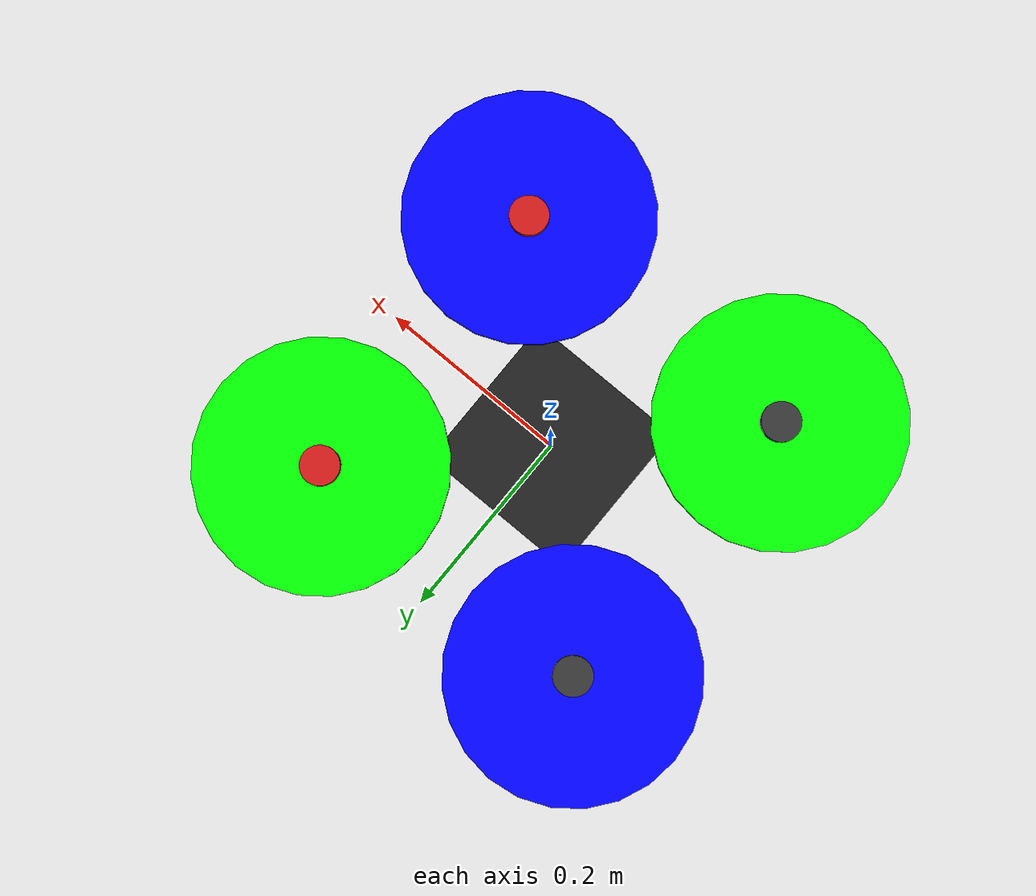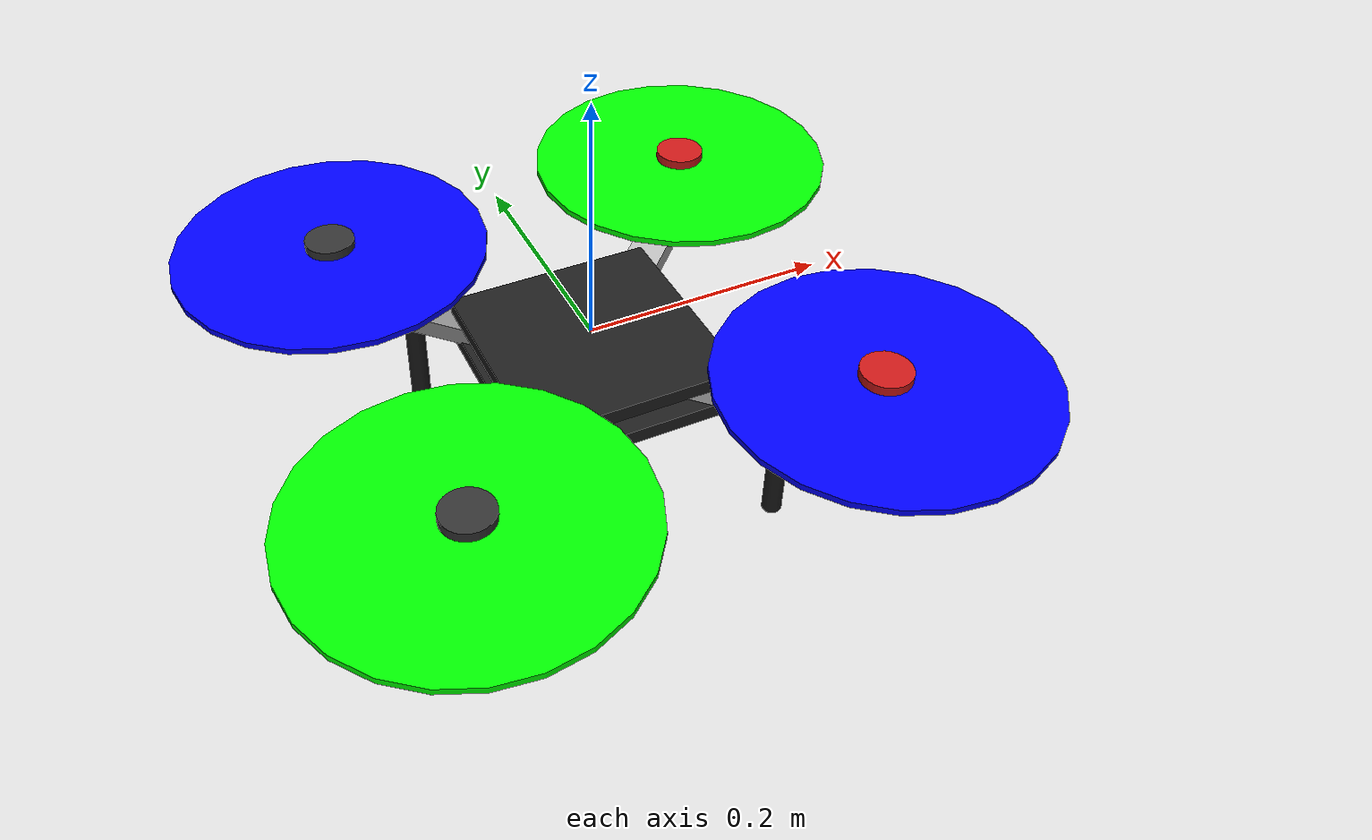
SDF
<?xml version='1.0'?>
<sdf version="1.9">
  <model name="sentinel_f450">
    <pose>0 0 0 0 0 0</pose>

    <link name="base_link">
      <velocity_decay>
        <linear>0.0</linear>
        <angular>0.0</angular>
      </velocity_decay>
      <inertial>
        <pose>0 0 0 0 0 0</pose>
        <mass>1.2</mass>
        <inertia>
          <ixx>0.011</ixx>
          <ixy>0</ixy>
          <ixz>0</ixz>
          <iyy>0.011</iyy>
          <iyz>0</iyz>
          <izz>0.019</izz>
        </inertia>
      </inertial>

      <!-- top plate -->
      <collision name="top_plate_collision">
        <pose>0 0 -0.01 0 0 0</pose>
        <geometry>
          <box>
            <size>0.17 0.17 0.012</size>
          </box>
        </geometry>
      </collision>
      <visual name="top_plate_visual">
        <pose>0 0 -0.01 0 0 0</pose>
        <geometry>
          <box>
            <size>0.17 0.17 0.012</size>
          </box>
        </geometry>
        <material>
          <ambient>0.12 0.12 0.12 1</ambient>
          <diffuse>0.12 0.12 0.12 1</diffuse>
          <specular>0.3 0.3 0.3 1</specular>
        </material>
      </visual>

      <!-- bottom plate -->
      <collision name="bottom_plate_collision">
        <pose>0 0 -0.038 0 0 0</pose>
        <geometry>
          <box>
            <size>0.17 0.17 0.012</size>
          </box>
        </geometry>
      </collision>
      <visual name="bottom_plate_visual">
        <pose>0 0 -0.038 0 0 0</pose>
        <geometry>
          <box>
            <size>0.17 0.17 0.012</size>
          </box>
        </geometry>
        <material>
          <ambient>0.12 0.12 0.12 1</ambient>
          <diffuse>0.12 0.12 0.12 1</diffuse>
          <specular>0.3 0.3 0.3 1</specular>
        </material>
      </visual>

      <!-- battery (visual only) -->
      <visual name="battery_visual">
        <pose>-0.02 0 -0.056 0 0 0</pose>
        <geometry>
          <box>
            <size>0.09 0.04 0.028</size>
          </box>
        </geometry>
        <material>
          <ambient>0.08 0.15 0.45 1</ambient>
          <diffuse>0.08 0.15 0.45 1</diffuse>
          <specular>0.2 0.2 0.2 1</specular>
        </material>
      </visual>

      <!-- arms (X layout, 45 deg) -->
      <collision name="arm_fl_collision">
        <pose>0.05 0.05 -0.026 0 0 0.7854</pose>
        <geometry>
          <box>
            <size>0.19 0.03 0.015</size>
          </box>
        </geometry>
      </collision>
      <visual name="arm_fl_visual">
        <pose>0.05 0.05 -0.026 0 0 0.7854</pose>
        <geometry>
          <box>
            <size>0.19 0.03 0.015</size>
          </box>
        </geometry>
        <material>
          <ambient>0.75 0.75 0.75 1</ambient>
          <diffuse>0.75 0.75 0.75 1</diffuse>
          <specular>0.2 0.2 0.2 1</specular>
        </material>
      </visual>

      <collision name="arm_fr_collision">
        <pose>0.05 -0.05 -0.026 0 0 -0.7854</pose>
        <geometry>
          <box>
            <size>0.19 0.03 0.015</size>
          </box>
        </geometry>
      </collision>
      <visual name="arm_fr_visual">
        <pose>0.05 -0.05 -0.026 0 0 -0.7854</pose>
        <geometry>
          <box>
            <size>0.19 0.03 0.015</size>
          </box>
        </geometry>
        <material>
          <ambient>0.75 0.75 0.75 1</ambient>
          <diffuse>0.75 0.75 0.75 1</diffuse>
          <specular>0.2 0.2 0.2 1</specular>
        </material>
      </visual>

      <collision name="arm_rl_collision">
        <pose>-0.05 0.05 -0.026 0 0 2.3562</pose>
        <geometry>
          <box>
            <size>0.19 0.03 0.015</size>
          </box>
        </geometry>
      </collision>
      <visual name="arm_rl_visual">
        <pose>-0.05 0.05 -0.026 0 0 2.3562</pose>
        <geometry>
          <box>
            <size>0.19 0.03 0.015</size>
          </box>
        </geometry>
        <material>
          <ambient>0.55 0.55 0.55 1</ambient>
          <diffuse>0.55 0.55 0.55 1</diffuse>
          <specular>0.2 0.2 0.2 1</specular>
        </material>
      </visual>

      <collision name="arm_rr_collision">
        <pose>-0.05 -0.05 -0.026 0 0 -2.3562</pose>
        <geometry>
          <box>
            <size>0.19 0.03 0.015</size>
          </box>
        </geometry>
      </collision>
      <visual name="arm_rr_visual">
        <pose>-0.05 -0.05 -0.026 0 0 -2.3562</pose>
        <geometry>
          <box>
            <size>0.19 0.03 0.015</size>
          </box>
        </geometry>
        <material>
          <ambient>0.55 0.55 0.55 1</ambient>
          <diffuse>0.55 0.55 0.55 1</diffuse>
          <specular>0.2 0.2 0.2 1</specular>
        </material>
      </visual>

      <!-- motor pods -->
      <collision name="pod_fl_collision">
        <pose>0.159 0.159 0.015 0 0 0</pose>
        <geometry>
          <cylinder>
            <radius>0.02</radius>
            <length>0.03</length>
          </cylinder>
        </geometry>
      </collision>
      <visual name="pod_fl_visual">
        <pose>0.159 0.159 0.015 0 0 0</pose>
        <geometry>
          <cylinder>
            <radius>0.02</radius>
            <length>0.03</length>
          </cylinder>
        </geometry>
        <material>
          <ambient>0.8 0.1 0.1 1</ambient>
          <diffuse>0.8 0.1 0.1 1</diffuse>
          <specular>0.3 0.3 0.3 1</specular>
        </material>
      </visual>

      <collision name="pod_fr_collision">
        <pose>0.159 -0.159 0.015 0 0 0</pose>
        <geometry>
          <cylinder>
            <radius>0.02</radius>
            <length>0.03</length>
          </cylinder>
        </geometry>
      </collision>
      <visual name="pod_fr_visual">
        <pose>0.159 -0.159 0.015 0 0 0</pose>
        <geometry>
          <cylinder>
            <radius>0.02</radius>
            <length>0.03</length>
          </cylinder>
        </geometry>
        <material>
          <ambient>0.8 0.1 0.1 1</ambient>
          <diffuse>0.8 0.1 0.1 1</diffuse>
          <specular>0.3 0.3 0.3 1</specular>
        </material>
      </visual>

      <collision name="pod_rl_collision">
        <pose>-0.159 0.159 0.015 0 0 0</pose>
        <geometry>
          <cylinder>
            <radius>0.02</radius>
            <length>0.03</length>
          </cylinder>
        </geometry>
      </collision>
      <visual name="pod_rl_visual">
        <pose>-0.159 0.159 0.015 0 0 0</pose>
        <geometry>
          <cylinder>
            <radius>0.02</radius>
            <length>0.03</length>
          </cylinder>
        </geometry>
        <material>
          <ambient>0.2 0.2 0.2 1</ambient>
          <diffuse>0.2 0.2 0.2 1</diffuse>
          <specular>0.3 0.3 0.3 1</specular>
        </material>
      </visual>

      <collision name="pod_rr_collision">
        <pose>-0.159 -0.159 0.015 0 0 0</pose>
        <geometry>
          <cylinder>
            <radius>0.02</radius>
            <length>0.03</length>
          </cylinder>
        </geometry>
      </collision>
      <visual name="pod_rr_visual">
        <pose>-0.159 -0.159 0.015 0 0 0</pose>
        <geometry>
          <cylinder>
            <radius>0.02</radius>
            <length>0.03</length>
          </cylinder>
        </geometry>
        <material>
          <ambient>0.2 0.2 0.2 1</ambient>
          <diffuse>0.2 0.2 0.2 1</diffuse>
          <specular>0.3 0.3 0.3 1</specular>
        </material>
      </visual>

      <!-- landing skids -->
      <collision name="skid_fl_collision">
        <pose>0.11 0.11 -0.09 0 0 0</pose>
        <geometry>
          <cylinder>
            <radius>0.008</radius>
            <length>0.10</length>
          </cylinder>
        </geometry>
      </collision>
      <visual name="skid_fl_visual">
        <pose>0.11 0.11 -0.09 0 0 0</pose>
        <geometry>
          <cylinder>
            <radius>0.008</radius>
            <length>0.10</length>
          </cylinder>
        </geometry>
        <material>
          <ambient>0.1 0.1 0.1 1</ambient>
          <diffuse>0.1 0.1 0.1 1</diffuse>
          <specular>0.2 0.2 0.2 1</specular>
        </material>
      </visual>

      <collision name="skid_fr_collision">
        <pose>0.11 -0.11 -0.09 0 0 0</pose>
        <geometry>
          <cylinder>
            <radius>0.008</radius>
            <length>0.10</length>
          </cylinder>
        </geometry>
      </collision>
      <visual name="skid_fr_visual">
        <pose>0.11 -0.11 -0.09 0 0 0</pose>
        <geometry>
          <cylinder>
            <radius>0.008</radius>
            <length>0.10</length>
          </cylinder>
        </geometry>
        <material>
          <ambient>0.1 0.1 0.1 1</ambient>
          <diffuse>0.1 0.1 0.1 1</diffuse>
          <specular>0.2 0.2 0.2 1</specular>
        </material>
      </visual>

      <collision name="skid_rl_collision">
        <pose>-0.11 0.11 -0.09 0 0 0</pose>
        <geometry>
          <cylinder>
            <radius>0.008</radius>
            <length>0.10</length>
          </cylinder>
        </geometry>
      </collision>
      <visual name="skid_rl_visual">
        <pose>-0.11 0.11 -0.09 0 0 0</pose>
        <geometry>
          <cylinder>
            <radius>0.008</radius>
            <length>0.10</length>
          </cylinder>
        </geometry>
        <material>
          <ambient>0.1 0.1 0.1 1</ambient>
          <diffuse>0.1 0.1 0.1 1</diffuse>
          <specular>0.2 0.2 0.2 1</specular>
        </material>
      </visual>

      <collision name="skid_rr_collision">
        <pose>-0.11 -0.11 -0.09 0 0 0</pose>
        <geometry>
          <cylinder>
            <radius>0.008</radius>
            <length>0.10</length>
          </cylinder>
        </geometry>
      </collision>
      <visual name="skid_rr_visual">
        <pose>-0.11 -0.11 -0.09 0 0 0</pose>
        <geometry>
          <cylinder>
            <radius>0.008</radius>
            <length>0.10</length>
          </cylinder>
        </geometry>
        <material>
          <ambient>0.1 0.1 0.1 1</ambient>
          <diffuse>0.1 0.1 0.1 1</diffuse>
          <specular>0.2 0.2 0.2 1</specular>
        </material>
      </visual>
    </link>

    <!-- IMU (conventions copied from iris_with_standoffs) -->
    <link name="imu_link">
      <inertial>
        <pose>0 0 0 0 0 0</pose>
        <mass>0.15</mass>
        <inertia>
          <ixx>0.00001</ixx>
          <ixy>0</ixy>
          <ixz>0</ixz>
          <iyy>0.00002</iyy>
          <iyz>0</iyz>
          <izz>0.00002</izz>
        </inertia>
      </inertial>
      <sensor name="imu_sensor" type="imu">
        <gz_frame_id>imu_link</gz_frame_id>
        <pose degrees="true">0 0 0 180 0 0</pose>
        <always_on>1</always_on>
        <update_rate>1000.0</update_rate>
      </sensor>
    </link>
    <joint name="imu_joint" type="revolute">
      <child>imu_link</child>
      <parent>base_link</parent>
      <axis>
        <xyz>0 0 1</xyz>
        <limit>
          <lower>0</lower>
          <upper>0</upper>
          <effort>0</effort>
          <velocity>0</velocity>
        </limit>
        <dynamics>
          <damping>1.0</damping>
        </dynamics>
      </axis>
    </joint>

    <!-- rotors: 10" props, X layout -->
    <link name="rotor_0">
      <pose>0.159 -0.159 0.02 0 0 0</pose>
      <inertial>
        <pose>0 0 0 0 0 0</pose>
        <mass>0.025</mass>
        <inertia>
          <ixx>9.75e-06</ixx>
          <ixy>0</ixy>
          <ixz>0</ixz>
          <iyy>0.000166704</iyy>
          <iyz>0</iyz>
          <izz>0.000167604</izz>
        </inertia>
      </inertial>
      <collision name="collision">
        <geometry>
          <cylinder>
            <length>0.005</length>
            <radius>0.127</radius>
          </cylinder>
        </geometry>
      </collision>
      <visual name="visual">
        <geometry>
          <cylinder>
            <length>0.005</length>
            <radius>0.127</radius>
          </cylinder>
        </geometry>
        <material>
          <ambient>0 0 1 1</ambient>
          <diffuse>0 0 1 1</diffuse>
          <specular>0.5 0.5 0.5 1</specular>
        </material>
      </visual>
    </link>
    <joint name="rotor_0_joint" type="revolute">
      <child>rotor_0</child>
      <parent>base_link</parent>
      <axis>
        <xyz>0 0 1</xyz>
        <limit>
          <lower>-1e+16</lower>
          <upper>1e+16</upper>
        </limit>
        <dynamics>
          <damping>0.004</damping>
        </dynamics>
      </axis>
    </joint>

    <link name="rotor_1">
      <pose>-0.159 0.159 0.02 0 0 0</pose>
      <inertial>
        <pose>0 0 0 0 0 0</pose>
        <mass>0.025</mass>
        <inertia>
          <ixx>9.75e-06</ixx>
          <ixy>0</ixy>
          <ixz>0</ixz>
          <iyy>0.000166704</iyy>
          <iyz>0</iyz>
          <izz>0.000167604</izz>
        </inertia>
      </inertial>
      <collision name="collision">
        <geometry>
          <cylinder>
            <length>0.005</length>
            <radius>0.127</radius>
          </cylinder>
        </geometry>
      </collision>
      <visual name="visual">
        <geometry>
          <cylinder>
            <length>0.005</length>
            <radius>0.127</radius>
          </cylinder>
        </geometry>
        <material>
          <ambient>0 0 1 1</ambient>
          <diffuse>0 0 1 1</diffuse>
          <specular>0.5 0.5 0.5 1</specular>
        </material>
      </visual>
    </link>
    <joint name="rotor_1_joint" type="revolute">
      <child>rotor_1</child>
      <parent>base_link</parent>
      <axis>
        <xyz>0 0 1</xyz>
        <limit>
          <lower>-1e+16</lower>
          <upper>1e+16</upper>
        </limit>
        <dynamics>
          <damping>0.004</damping>
        </dynamics>
      </axis>
    </joint>

    <link name="rotor_2">
      <pose>0.159 0.159 0.02 0 0 0</pose>
      <inertial>
        <pose>0 0 0 0 0 0</pose>
        <mass>0.025</mass>
        <inertia>
          <ixx>9.75e-06</ixx>
          <ixy>0</ixy>
          <ixz>0</ixz>
          <iyy>0.000166704</iyy>
          <iyz>0</iyz>
          <izz>0.000167604</izz>
        </inertia>
      </inertial>
      <collision name="collision">
        <geometry>
          <cylinder>
            <length>0.005</length>
            <radius>0.127</radius>
          </cylinder>
        </geometry>
      </collision>
      <visual name="visual">
        <geometry>
          <cylinder>
            <length>0.005</length>
            <radius>0.127</radius>
          </cylinder>
        </geometry>
        <material>
          <ambient>0 1 0 1</ambient>
          <diffuse>0 1 0 1</diffuse>
          <specular>0.5 0.5 0.5 1</specular>
        </material>
      </visual>
    </link>
    <joint name="rotor_2_joint" type="revolute">
      <child>rotor_2</child>
      <parent>base_link</parent>
      <axis>
        <xyz>0 0 1</xyz>
        <limit>
          <lower>-1e+16</lower>
          <upper>1e+16</upper>
        </limit>
        <dynamics>
          <damping>0.004</damping>
        </dynamics>
      </axis>
    </joint>

    <link name="rotor_3">
      <pose>-0.159 -0.159 0.02 0 0 0</pose>
      <inertial>
        <pose>0 0 0 0 0 0</pose>
        <mass>0.025</mass>
        <inertia>
          <ixx>9.75e-06</ixx>
          <ixy>0</ixy>
          <ixz>0</ixz>
          <iyy>0.000166704</iyy>
          <iyz>0</iyz>
          <izz>0.000167604</izz>
        </inertia>
      </inertial>
      <collision name="collision">
        <geometry>
          <cylinder>
            <length>0.005</length>
            <radius>0.127</radius>
          </cylinder>
        </geometry>
      </collision>
      <visual name="visual">
        <geometry>
          <cylinder>
            <length>0.005</length>
            <radius>0.127</radius>
          </cylinder>
        </geometry>
        <material>
          <ambient>0 1 0 1</ambient>
          <diffuse>0 1 0 1</diffuse>
          <specular>0.5 0.5 0.5 1</specular>
        </material>
      </visual>
    </link>
    <joint name="rotor_3_joint" type="revolute">
      <child>rotor_3</child>
      <parent>base_link</parent>
      <axis>
        <xyz>0 0 1</xyz>
        <limit>
          <lower>-1e+16</lower>
          <upper>1e+16</upper>
        </limit>
        <dynamics>
          <damping>0.004</damping>
        </dynamics>
      </axis>
    </joint>

    <!-- forward-facing OV5647-style camera (pose copied from iris gimbal) -->
    <link name="camera_link">
      <pose degrees="true">0 -0.01 -0.10 90 0 90</pose>
      <inertial>
        <mass>0.03</mass>
        <inertia>
          <ixx>1e-05</ixx>
          <ixy>0</ixy>
          <ixz>0</ixz>
          <iyy>1e-05</iyy>
          <iyz>0</iyz>
          <izz>1e-05</izz>
        </inertia>
      </inertial>
      <visual name="camera_body_visual">
        <geometry>
          <box>
            <size>0.04 0.04 0.03</size>
          </box>
        </geometry>
        <material>
          <ambient>0.08 0.08 0.08 1</ambient>
          <diffuse>0.08 0.08 0.08 1</diffuse>
          <specular>0.3 0.3 0.3 1</specular>
        </material>
      </visual>

      <sensor name="camera" type="camera">
        <gz_frame_id>camera_link</gz_frame_id>
        <pose>0 0 0 -1.57 -1.57 0</pose>
        <camera>
          <!-- OV5647: 53.5 deg horizontal FOV (user spec) -->
          <horizontal_fov>0.93375</horizontal_fov>
          <image>
            <width>640</width>
            <height>480</height>
            <format>R8G8B8</format>
          </image>
          <clip>
            <near>0.05</near>
            <far>150</far>
          </clip>
        </camera>
        <always_on>1</always_on>
        <!-- real OV5647 does 58.92 fps @ 640x480; 40 keeps sim CPU happy -->
        <update_rate>40</update_rate>
        <visualize>0</visualize>

        <!-- stream MPEG-TS to the depth_node's default UDP port.
             use_basic_pipeline MUST be false: true sends raw RTP H264,
             which the depth node's FFmpeg opener cannot demux. -->
        <plugin name="GstCameraPlugin" filename="GstCameraPlugin">
          <udp_host>127.0.0.1</udp_host>
          <udp_port>5600</udp_port>
          <use_basic_pipeline>false</use_basic_pipeline>
          <use_cuda>false</use_cuda>
        </plugin>
      </sensor>

      <sensor name="depth_camera" type="depth_camera">
        <gz_frame_id>camera_link</gz_frame_id>
        <pose>0 0 0 -1.57 -1.57 0</pose>
        <camera>
          <horizontal_fov>0.93375</horizontal_fov>
          <image>
            <width>640</width>
            <height>480</height>
          </image>
          <clip>
            <near>0.1</near>
            <far>60</far>
          </clip>
        </camera>
        <always_on>1</always_on>
        <update_rate>15</update_rate>
        <visualize>0</visualize>
      </sensor>
    </link>
    <joint name="camera_joint" type="fixed">
      <parent>base_link</parent>
      <child>camera_link</child>
    </joint>

    <!-- ================= plugins ================= -->
    <plugin filename="gz-sim-joint-state-publisher-system"
      name="gz::sim::systems::JointStatePublisher">
    </plugin>

    <plugin filename="gz-sim-lift-drag-system"
        name="gz::sim::systems::LiftDrag">
      <a0>0.3</a0>
      <alpha_stall>1.4</alpha_stall>
      <cla>4.2500</cla>
      <cda>0.10</cda>
      <cma>0.0</cma>
      <cla_stall>-0.025</cla_stall>
      <cda_stall>0.0</cda_stall>
      <cma_stall>0.0</cma_stall>
      <area>0.002</area>
      <air_density>1.2041</air_density>
      <cp>0.084 0 0</cp>
      <forward>0 1 0</forward>
      <upward>0 0 1</upward>
      <link_name>rotor_0</link_name>
    </plugin>
    <plugin filename="gz-sim-lift-drag-system"
        name="gz::sim::systems::LiftDrag">
      <a0>0.3</a0>
      <alpha_stall>1.4</alpha_stall>
      <cla>4.2500</cla>
      <cda>0.10</cda>
      <cma>0.0</cma>
      <cla_stall>-0.025</cla_stall>
      <cda_stall>0.0</cda_stall>
      <cma_stall>0.0</cma_stall>
      <area>0.002</area>
      <air_density>1.2041</air_density>
      <cp>-0.084 0 0</cp>
      <forward>0 -1 0</forward>
      <upward>0 0 1</upward>
      <link_name>rotor_0</link_name>
    </plugin>

    <plugin filename="gz-sim-lift-drag-system"
        name="gz::sim::systems::LiftDrag">
      <a0>0.3</a0>
      <alpha_stall>1.4</alpha_stall>
      <cla>4.2500</cla>
      <cda>0.10</cda>
      <cma>0.0</cma>
      <cla_stall>-0.025</cla_stall>
      <cda_stall>0.0</cda_stall>
      <cma_stall>0.0</cma_stall>
      <area>0.002</area>
      <air_density>1.2041</air_density>
      <cp>0.084 0 0</cp>
      <forward>0 1 0</forward>
      <upward>0 0 1</upward>
      <link_name>rotor_1</link_name>
    </plugin>
    <plugin filename="gz-sim-lift-drag-system"
        name="gz::sim::systems::LiftDrag">
      <a0>0.3</a0>
      <alpha_stall>1.4</alpha_stall>
      <cla>4.2500</cla>
      <cda>0.10</cda>
      <cma>0.0</cma>
      <cla_stall>-0.025</cla_stall>
      <cda_stall>0.0</cda_stall>
      <cma_stall>0.0</cma_stall>
      <area>0.002</area>
      <air_density>1.2041</air_density>
      <cp>-0.084 0 0</cp>
      <forward>0 -1 0</forward>
      <upward>0 0 1</upward>
      <link_name>rotor_1</link_name>
    </plugin>

    <plugin filename="gz-sim-lift-drag-system"
        name="gz::sim::systems::LiftDrag">
      <a0>0.3</a0>
      <alpha_stall>1.4</alpha_stall>
      <cla>4.2500</cla>
      <cda>0.10</cda>
      <cma>0.0</cma>
      <cla_stall>-0.025</cla_stall>
      <cda_stall>0.0</cda_stall>
      <cma_stall>0.0</cma_stall>
      <area>0.002</area>
      <air_density>1.2041</air_density>
      <cp>0.084 0 0</cp>
      <forward>0 -1 0</forward>
      <upward>0 0 1</upward>
      <link_name>rotor_2</link_name>
    </plugin>
    <plugin filename="gz-sim-lift-drag-system"
        name="gz::sim::systems::LiftDrag">
      <a0>0.3</a0>
      <alpha_stall>1.4</alpha_stall>
      <cla>4.2500</cla>
      <cda>0.10</cda>
      <cma>0.0</cma>
      <cla_stall>-0.025</cla_stall>
      <cda_stall>0.0</cda_stall>
      <cma_stall>0.0</cma_stall>
      <area>0.002</area>
      <air_density>1.2041</air_density>
      <cp>-0.084 0 0</cp>
      <forward>0 1 0</forward>
      <upward>0 0 1</upward>
      <link_name>rotor_2</link_name>
    </plugin>

    <plugin filename="gz-sim-lift-drag-system"
        name="gz::sim::systems::LiftDrag">
      <a0>0.3</a0>
      <alpha_stall>1.4</alpha_stall>
      <cla>4.2500</cla>
      <cda>0.10</cda>
      <cma>0.0</cma>
      <cla_stall>-0.025</cla_stall>
      <cda_stall>0.0</cda_stall>
      <cma_stall>0.0</cma_stall>
      <area>0.002</area>
      <air_density>1.2041</air_density>
      <cp>0.084 0 0</cp>
      <forward>0 -1 0</forward>
      <upward>0 0 1</upward>
      <link_name>rotor_3</link_name>
    </plugin>
    <plugin filename="gz-sim-lift-drag-system"
        name="gz::sim::systems::LiftDrag">
      <a0>0.3</a0>
      <alpha_stall>1.4</alpha_stall>
      <cla>4.2500</cla>
      <cda>0.10</cda>
      <cma>0.0</cma>
      <cla_stall>-0.025</cla_stall>
      <cda_stall>0.0</cda_stall>
      <cma_stall>0.0</cma_stall>
      <area>0.002</area>
      <air_density>1.2041</air_density>
      <cp>-0.084 0 0</cp>
      <forward>0 1 0</forward>
      <upward>0 0 1</upward>
      <link_name>rotor_3</link_name>
    </plugin>

    <plugin filename="gz-sim-apply-joint-force-system"
      name="gz::sim::systems::ApplyJointForce">
      <joint_name>rotor_0_joint</joint_name>
    </plugin>
    <plugin filename="gz-sim-apply-joint-force-system"
      name="gz::sim::systems::ApplyJointForce">
      <joint_name>rotor_1_joint</joint_name>
    </plugin>
    <plugin filename="gz-sim-apply-joint-force-system"
      name="gz::sim::systems::ApplyJointForce">
      <joint_name>rotor_2_joint</joint_name>
    </plugin>
    <plugin filename="gz-sim-apply-joint-force-system"
      name="gz::sim::systems::ApplyJointForce">
      <joint_name>rotor_3_joint</joint_name>
    </plugin>

    <!-- SITL bridge (same config as iris_with_gimbal, no gimbal) -->
    <plugin name="ArduPilotPlugin" filename="ArduPilotPlugin">
      <fdm_addr>127.0.0.1</fdm_addr>
      <fdm_port_in>9002</fdm_port_in>
      <connectionTimeoutMaxCount>5</connectionTimeoutMaxCount>
      <lock_step>1</lock_step>
      <no_time_sync>1</no_time_sync>

      <modelXYZToAirplaneXForwardZDown degrees="true">0 0 0 180 0 0</modelXYZToAirplaneXForwardZDown>
      <gazeboXYZToNED degrees="true">0 0 0 180 0 90</gazeboXYZToNED>

      <imuName>imu_link::imu_sensor</imuName>

      <control channel="0">
        <jointName>rotor_0_joint</jointName>
        <useForce>1</useForce>
        <multiplier>838</multiplier>
        <offset>0</offset>
        <servo_min>1100</servo_min>
        <servo_max>1900</servo_max>
        <type>VELOCITY</type>
        <p_gain>0.20</p_gain>
        <i_gain>0</i_gain>
        <d_gain>0</d_gain>
        <i_max>0</i_max>
        <i_min>0</i_min>
        <cmd_max>2.5</cmd_max>
        <cmd_min>-2.5</cmd_min>
        <controlVelocitySlowdownSim>1</controlVelocitySlowdownSim>
      </control>

      <control channel="1">
        <jointName>rotor_1_joint</jointName>
        <useForce>1</useForce>
        <multiplier>838</multiplier>
        <offset>0</offset>
        <servo_min>1100</servo_min>
        <servo_max>1900</servo_max>
        <type>VELOCITY</type>
        <p_gain>0.20</p_gain>
        <i_gain>0</i_gain>
        <d_gain>0</d_gain>
        <i_max>0</i_max>
        <i_min>0</i_min>
        <cmd_max>2.5</cmd_max>
        <cmd_min>-2.5</cmd_min>
        <controlVelocitySlowdownSim>1</controlVelocitySlowdownSim>
      </control>

      <control channel="2">
        <jointName>rotor_2_joint</jointName>
        <useForce>1</useForce>
        <multiplier>-838</multiplier>
        <offset>0</offset>
        <servo_min>1100</servo_min>
        <servo_max>1900</servo_max>
        <type>VELOCITY</type>
        <p_gain>0.20</p_gain>
        <i_gain>0</i_gain>
        <d_gain>0</d_gain>
        <i_max>0</i_max>
        <i_min>0</i_min>
        <cmd_max>2.5</cmd_max>
        <cmd_min>-2.5</cmd_min>
        <controlVelocitySlowdownSim>1</controlVelocitySlowdownSim>
      </control>

      <control channel="3">
        <jointName>rotor_3_joint</jointName>
        <useForce>1</useForce>
        <multiplier>-838</multiplier>
        <offset>0</offset>
        <servo_min>1100</servo_min>
        <servo_max>1900</servo_max>
        <type>VELOCITY</type>
        <p_gain>0.20</p_gain>
        <i_gain>0</i_gain>
        <d_gain>0</d_gain>
        <i_max>0</i_max>
        <i_min>0</i_min>
        <cmd_max>2.5</cmd_max>
        <cmd_min>-2.5</cmd_min>
        <controlVelocitySlowdownSim>1</controlVelocitySlowdownSim>
      </control>
    </plugin>

  </model>
</sdf>
